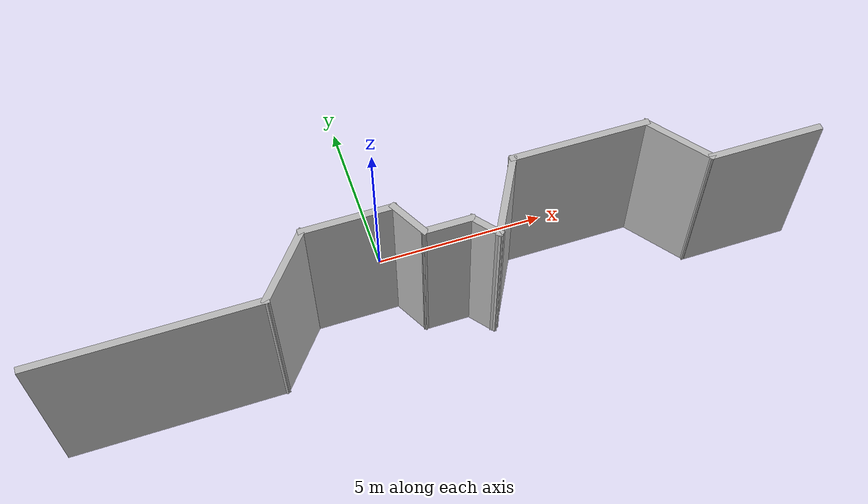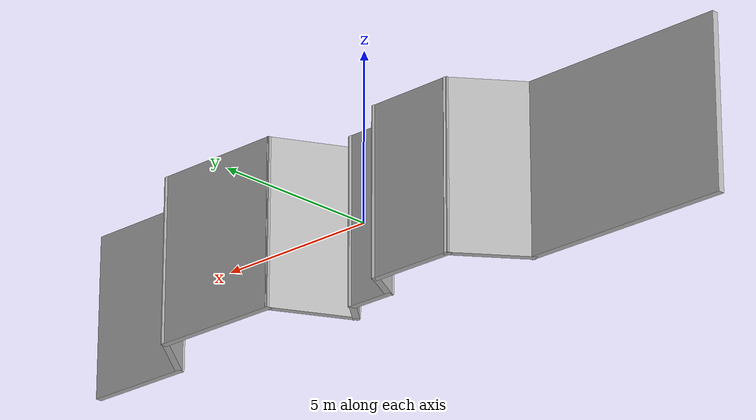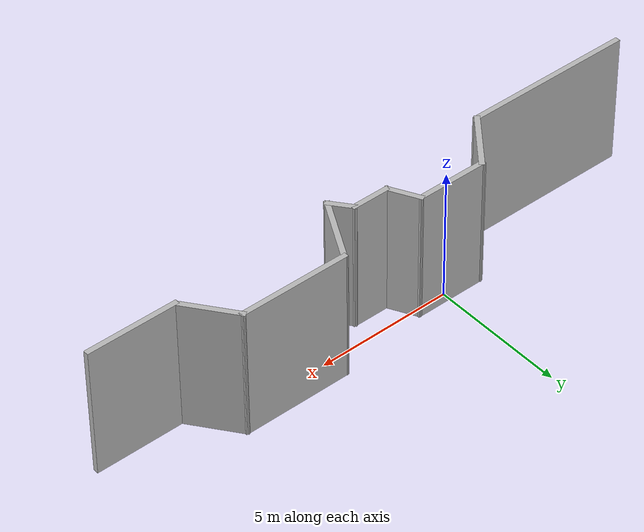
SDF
<?xml version='1.0'?>
<sdf version='1.5'>
  <model name='sample_wall2'>
    <link name='Wall_0'>
      <collision name='Wall_0_Collision'>
        <geometry>
          <box>
            <size>6.4 0.2 5</size>
          </box>
        </geometry>
        <pose>0 0 1.25 0 -0 0</pose>
      </collision>
      <visual name='Wall_0_Visual'>
        <pose>0 0 1.25 0 -0 0</pose>
        <geometry>
          <box>
            <size>6.4 0.2 5</size>
          </box>
        </geometry>
        <material>
          <script>
            <uri>model://sample_wall2/materials/scripts</uri>
            <uri>model://sample_wall2/materials/textures</uri>
            <name>tex/wall</name>
          </script>
        </material>
      </visual>
      <pose>-6.74 -2.56 0 0 -0 0</pose>
    </link>
    <link name='Wall_1'>
      <collision name='Wall_1_Collision'>
        <geometry>
          <box>
            <size>2.44891 0.2 5</size>
          </box>
        </geometry>
        <pose>0 0 1.25 0 -0 0</pose>
      </collision>
      <visual name='Wall_1_Visual'>
        <pose>0 0 1.25 0 -0 0</pose>
        <geometry>
          <box>
            <size>2.44891 0.2 5</size>
          </box>
        </geometry>
        <material>
          <script>
            <uri>model://sample_wall2/materials/scripts</uri>
            <uri>model://sample_wall2/materials/textures</uri>
            <name>tex/wall</name>
          </script>
        </material>
      </visual>
      <pose>-2.94 -1.68 0 0 -0 0.898833</pose>
    </link>
    <link name='Wall_12'>
      <collision name='Wall_12_Collision'>
        <geometry>
          <box>
            <size>3.4269 0.2 5</size>
          </box>
        </geometry>
        <pose>0 0 1.25 0 -0 0</pose>
      </collision>
      <visual name='Wall_12_Visual'>
        <pose>0 0 1.25 0 -0 0</pose>
        <geometry>
          <box>
            <size>3.4269 0.2 5</size>
          </box>
        </geometry>
        <material>
          <script>
            <uri>model://sample_wall2/materials/scripts</uri>
            <uri>model://sample_wall2/materials/textures</uri>
            <name>tex/wall</name>
          </script>
        </material>
      </visual>
      <pose>10.7006 -1.98541 0 0 -0 0</pose>
    </link>
    <link name='Wall_2'>
      <collision name='Wall_2_Collision'>
        <geometry>
          <box>
            <size>2.75 0.2 5</size>
          </box>
        </geometry>
        <pose>0 0 1.25 0 -0 0</pose>
      </collision>
      <visual name='Wall_2_Visual'>
        <pose>0 0 1.25 0 -0 0</pose>
        <geometry>
          <box>
            <size>2.75 0.2 5</size>
          </box>
        </geometry>
        <material>
          <script>
            <uri>model://sample_wall2/materials/scripts</uri>
            <uri>model://sample_wall2/materials/textures</uri>
            <name>tex/wall</name>
          </script>
        </material>
      </visual>
      <pose>-0.965 -0.8 0 0 -0 0</pose>
    </link>
    <link name='Wall_3'>
      <collision name='Wall_3_Collision'>
        <geometry>
          <box>
            <size>1.34948 0.2 5</size>
          </box>
        </geometry>
        <pose>0 0 1.25 0 -0 0</pose>
      </collision>
      <visual name='Wall_3_Visual'>
        <pose>0 0 1.25 0 -0 0</pose>
        <geometry>
          <box>
            <size>1.34948 0.2 5</size>
          </box>
        </geometry>
        <material>
          <script>
            <uri>model://sample_wall2/materials/scripts</uri>
            <uri>model://sample_wall2/materials/textures</uri>
            <name>tex/wall</name>
          </script>
        </material>
      </visual>
      <pose>0.575 -1.31 0 0 0 -1.09159</pose>
    </link>
    <link name='Wall_4'>
      <collision name='Wall_4_Collision'>
        <geometry>
          <box>
            <size>1.53 0.2 5</size>
          </box>
        </geometry>
        <pose>0 0 1.25 0 -0 0</pose>
      </collision>
      <visual name='Wall_4_Visual'>
        <pose>0 0 1.25 0 -0 0</pose>
        <geometry>
          <box>
            <size>1.53 0.2 5</size>
          </box>
        </geometry>
        <material>
          <script>
            <uri>model://sample_wall2/materials/scripts</uri>
            <uri>model://sample_wall2/materials/textures</uri>
            <name>tex/wall</name>
          </script>
        </material>
      </visual>
      <pose>1.505 -1.82 0 0 -0 0</pose>
    </link>
    <link name='Wall_5'>
      <collision name='Wall_5_Collision'>
        <geometry>
          <box>
            <size>1.06215 0.2 5</size>
          </box>
        </geometry>
        <pose>0 0 1.25 0 -0 0</pose>
      </collision>
      <visual name='Wall_5_Visual'>
        <pose>0 0 1.25 0 -0 0</pose>
        <geometry>
          <box>
            <size>1.06215 0.2 5</size>
          </box>
        </geometry>
        <material>
          <script>
            <uri>model://sample_wall2/materials/scripts</uri>
            <uri>model://sample_wall2/materials/textures</uri>
            <name>tex/wall</name>
          </script>
        </material>
      </visual>
      <pose>2.435 -2.16 0 0 0 -0.908736</pose>
    </link>
    <link name='Wall_6'>
      <collision name='Wall_6_Collision'>
        <geometry>
          <box>
            <size>2.68767 0.2 5</size>
          </box>
        </geometry>
        <pose>0 0 1.25 0 -0 0</pose>
      </collision>
      <visual name='Wall_6_Visual'>
        <pose>0 0 1.25 0 -0 0</pose>
        <geometry>
          <box>
            <size>2.68767 0.2 5</size>
          </box>
        </geometry>
        <material>
          <script>
            <uri>model://sample_wall2/materials/scripts</uri>
            <uri>model://sample_wall2/materials/textures</uri>
            <name>tex/wall</name>
          </script>
        </material>
      </visual>
      <pose>3.29 -1.405 0 0 -0 1.07658</pose>
    </link>
    <link name='Wall_8'>
      <collision name='Wall_8_Collision'>
        <geometry>
          <box>
            <size>4.15428 0.2 5</size>
          </box>
        </geometry>
        <pose>0 0 1.25 0 -0 0</pose>
      </collision>
      <visual name='Wall_8_Visual'>
        <pose>0 0 1.25 0 -0 0</pose>
        <geometry>
          <box>
            <size>4.15428 0.2 5</size>
          </box>
        </geometry>
        <material>
          <script>
            <uri>model://sample_wall2/materials/scripts</uri>
            <uri>model://sample_wall2/materials/textures</uri>
            <name>tex/wall</name>
          </script>
        </material>
      </visual>
      <pose>5.86687 -0.292607 0 0 -0 0</pose>
    </link>
    <link name='Wall_9'>
      <collision name='Wall_9_Collision'>
        <geometry>
          <box>
            <size>2.2711 0.2 5</size>
          </box>
        </geometry>
        <pose>0 0 1.25 0 -0 0</pose>
      </collision>
      <visual name='Wall_9_Visual'>
        <pose>0 0 1.25 0 -0 0</pose>
        <geometry>
          <box>
            <size>2.2711 0.2 5</size>
          </box>
        </geometry>
        <material>
          <script>
            <uri>model://sample_wall2/materials/scripts</uri>
            <uri>model://sample_wall2/materials/textures</uri>
            <name>tex/wall</name>
          </script>
        </material>
      </visual>
      <pose>8.45897 -1.12578 0 0 0 -0.934958</pose>
    </link>
    <static>1</static>
  </model>
</sdf>
